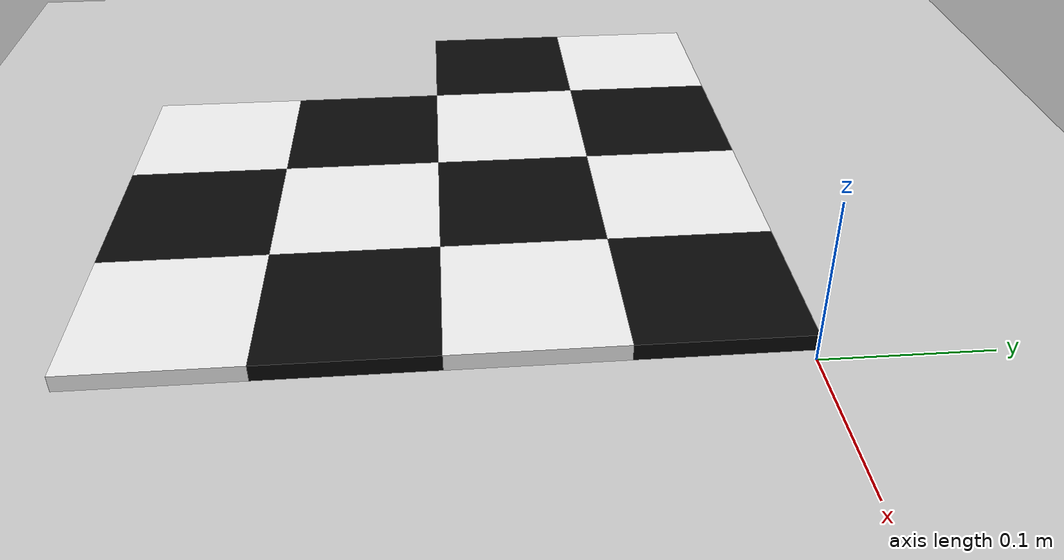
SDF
<sdf version="1.9">
 <world name="v7_railway_tunnel">
  <model name="ground_plane">
   <static>true</static>
   <link name="link">
    <collision name="collision">
     <geometry><plane><normal>0 0 1</normal><size>1 1</size></plane></geometry>
    </collision>
    <visual name="visual">
     <geometry><plane><normal>0 0 1</normal><size>500 500</size></plane></geometry>
     <material>
      <ambient>0.8 0.8 0.8 1</ambient>
      <diffuse>0.8 0.8 0.8 1</diffuse>
      <specular>0.1 0.1 0.1 1</specular>
     </material>
    </visual>
   </link>
  </model>
  <model name="optical_flow_floor">
   <static>true</static>
   <link name="fine_tile_0_2">
    <pose>-0.35 -0.15 0.012 0 0 0</pose>
    <visual name="visual">
     <geometry><box><size>0.1 0.1 0.01</size></box></geometry>
     <material>
      <ambient>0.03 0.03 0.03 1</ambient>
      <diffuse>0.03 0.03 0.03 1</diffuse>
      <specular>0.1 0.1 0.1 1</specular>
     </material>
    </visual>
   </link>
   <link name="fine_tile_0_3">
    <pose>-0.35 -0.05 0.012 0 0 0</pose>
    <visual name="visual">
     <geometry><box><size>0.1 0.1 0.01</size></box></geometry>
     <material>
      <ambient>0.95 0.95 0.95 1</ambient>
      <diffuse>0.95 0.95 0.95 1</diffuse>
      <specular>0.1 0.1 0.1 1</specular>
     </material>
    </visual>
   </link>
   <link name="fine_tile_1_0">
    <pose>-0.25 -0.35 0.012 0 0 0</pose>
    <visual name="visual">
     <geometry><box><size>0.1 0.1 0.01</size></box></geometry>
     <material>
      <ambient>0.95 0.95 0.95 1</ambient>
      <diffuse>0.95 0.95 0.95 1</diffuse>
      <specular>0.1 0.1 0.1 1</specular>
     </material>
    </visual>
   </link>
   <link name="fine_tile_1_1">
    <pose>-0.25 -0.25 0.012 0 0 0</pose>
    <visual name="visual">
     <geometry><box><size>0.1 0.1 0.01</size></box></geometry>
     <material>
      <ambient>0.03 0.03 0.03 1</ambient>
      <diffuse>0.03 0.03 0.03 1</diffuse>
      <specular>0.1 0.1 0.1 1</specular>
     </material>
    </visual>
   </link>
   <link name="fine_tile_1_2">
    <pose>-0.25 -0.15 0.012 0 0 0</pose>
    <visual name="visual">
     <geometry><box><size>0.1 0.1 0.01</size></box></geometry>
     <material>
      <ambient>0.95 0.95 0.95 1</ambient>
      <diffuse>0.95 0.95 0.95 1</diffuse>
      <specular>0.1 0.1 0.1 1</specular>
     </material>
    </visual>
   </link>
   <link name="fine_tile_1_3">
    <pose>-0.25 -0.05 0.012 0 0 0</pose>
    <visual name="visual">
     <geometry><box><size>0.1 0.1 0.01</size></box></geometry>
     <material>
      <ambient>0.03 0.03 0.03 1</ambient>
      <diffuse>0.03 0.03 0.03 1</diffuse>
      <specular>0.1 0.1 0.1 1</specular>
     </material>
    </visual>
   </link>
   <link name="fine_tile_2_0">
    <pose>-0.15 -0.35 0.012 0 0 0</pose>
    <visual name="visual">
     <geometry><box><size>0.1 0.1 0.01</size></box></geometry>
     <material>
      <ambient>0.03 0.03 0.03 1</ambient>
      <diffuse>0.03 0.03 0.03 1</diffuse>
      <specular>0.1 0.1 0.1 1</specular>
     </material>
    </visual>
   </link>
   <link name="fine_tile_2_1">
    <pose>-0.15 -0.25 0.012 0 0 0</pose>
    <visual name="visual">
     <geometry><box><size>0.1 0.1 0.01</size></box></geometry>
     <material>
      <ambient>0.95 0.95 0.95 1</ambient>
      <diffuse>0.95 0.95 0.95 1</diffuse>
      <specular>0.1 0.1 0.1 1</specular>
     </material>
    </visual>
   </link>
   <link name="fine_tile_2_2">
    <pose>-0.15 -0.15 0.012 0 0 0</pose>
    <visual name="visual">
     <geometry><box><size>0.1 0.1 0.01</size></box></geometry>
     <material>
      <ambient>0.03 0.03 0.03 1</ambient>
      <diffuse>0.03 0.03 0.03 1</diffuse>
      <specular>0.1 0.1 0.1 1</specular>
     </material>
    </visual>
   </link>
   <link name="fine_tile_2_3">
    <pose>-0.15 -0.05 0.012 0 0 0</pose>
    <visual name="visual">
     <geometry><box><size>0.1 0.1 0.01</size></box></geometry>
     <material>
      <ambient>0.95 0.95 0.95 1</ambient>
      <diffuse>0.95 0.95 0.95 1</diffuse>
      <specular>0.1 0.1 0.1 1</specular>
     </material>
    </visual>
   </link>
   <link name="fine_tile_3_0">
    <pose>-0.05 -0.35 0.012 0 0 0</pose>
    <visual name="visual">
     <geometry><box><size>0.1 0.1 0.01</size></box></geometry>
     <material>
      <ambient>0.95 0.95 0.95 1</ambient>
      <diffuse>0.95 0.95 0.95 1</diffuse>
      <specular>0.1 0.1 0.1 1</specular>
     </material>
    </visual>
   </link>
   <link name="fine_tile_3_1">
    <pose>-0.05 -0.25 0.012 0 0 0</pose>
    <visual name="visual">
     <geometry><box><size>0.1 0.1 0.01</size></box></geometry>
     <material>
      <ambient>0.03 0.03 0.03 1</ambient>
      <diffuse>0.03 0.03 0.03 1</diffuse>
      <specular>0.1 0.1 0.1 1</specular>
     </material>
    </visual>
   </link>
   <link name="fine_tile_3_2">
    <pose>-0.05 -0.15 0.012 0 0 0</pose>
    <visual name="visual">
     <geometry><box><size>0.1 0.1 0.01</size></box></geometry>
     <material>
      <ambient>0.95 0.95 0.95 1</ambient>
      <diffuse>0.95 0.95 0.95 1</diffuse>
      <specular>0.1 0.1 0.1 1</specular>
     </material>
    </visual>
   </link>
   <link name="fine_tile_3_3">
    <pose>-0.05 -0.05 0.012 0 0 0</pose>
    <visual name="visual">
     <geometry><box><size>0.1 0.1 0.01</size></box></geometry>
     <material>
      <ambient>0.03 0.03 0.03 1</ambient>
      <diffuse>0.03 0.03 0.03 1</diffuse>
      <specular>0.1 0.1 0.1 1</specular>
     </material>
    </visual>
   </link>
  </model>
 </world>
</sdf>
